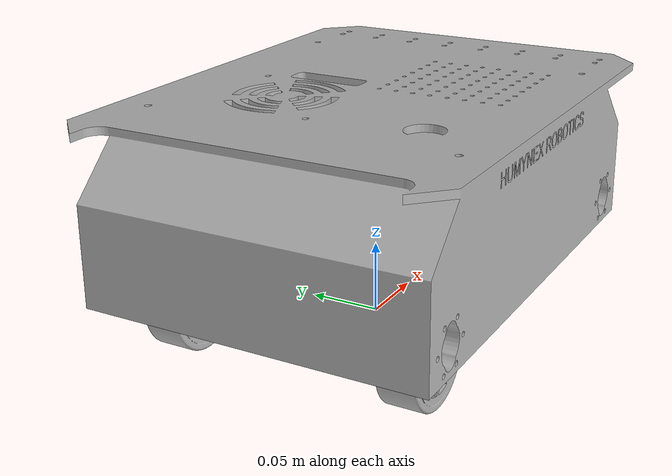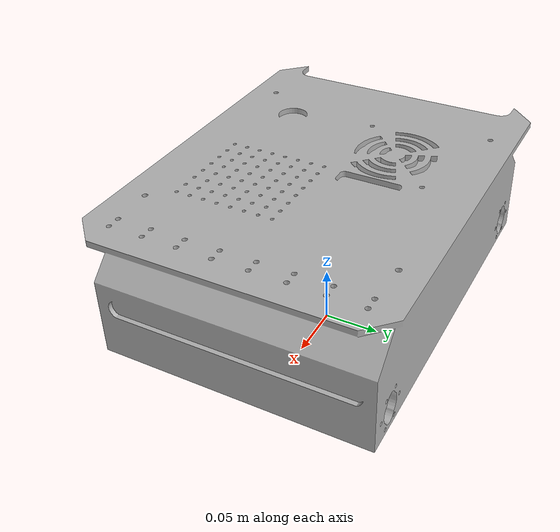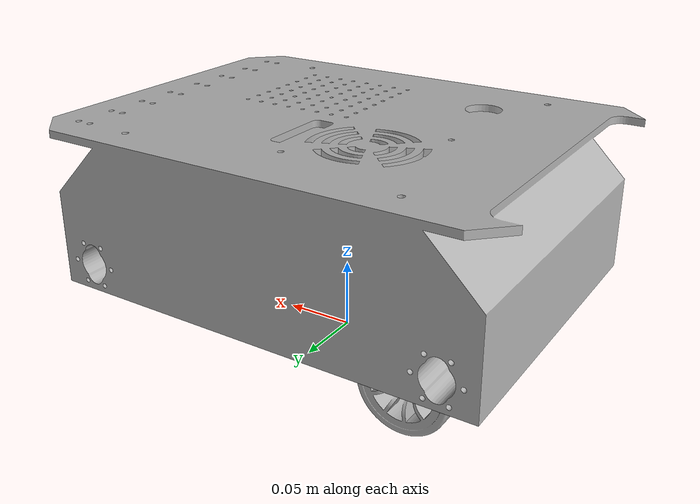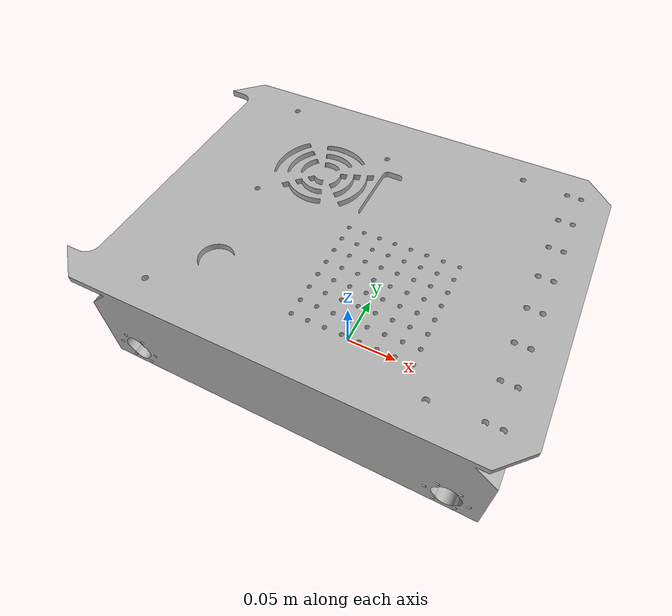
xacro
<?xml version="1.0" ?>
<robot name="mbot" xmlns:xacro="http://www.ros.org/wiki/xacro">

<xacro:include filename="$(find mbot_description)/urdf/materials.xacro" />
<xacro:include filename="$(find mbot_description)/urdf/mbot.trans" />
<xacro:include filename="$(find mbot_description)/urdf/mbot.gazebo" />
<link name="base_link">
  <inertial>
    <origin xyz="-0.007078599561218432 1.9724380014176952e-05 0.04251572924254428" rpy="0 0 0"/>
    <mass value="5.464337682688795"/>
    <inertia ixx="0.014973" iyy="0.027123" izz="0.035321" ixy="-2.4e-05" iyz="1e-06" ixz="0.002181"/>
  </inertial>
  <visual>
    <origin xyz="0 0 0" rpy="0 0 0"/>
    <geometry>
      <mesh filename="file://$(find mbot_description)/meshes/base_link.stl" scale="0.001 0.001 0.001"/>
    </geometry>
    <material name="silver"/>
  </visual>
  <collision>
    <origin xyz="0 0 0" rpy="0 0 0"/>
    <geometry>
      <mesh filename="file://$(find mbot_description)/meshes/base_link.stl" scale="0.001 0.001 0.001"/>
    </geometry>
  </collision>
</link>

<link name="right_back_wheel">
  <inertial>
    <origin xyz="-1.6533433490339977e-07 -0.00647885642709535 5.119932255936988e-13" rpy="0 0 0"/>
    <mass value="0.2490929871526092"/>
    <inertia ixx="9.3e-05" iyy="0.000155" izz="9.3e-05" ixy="-0.0" iyz="0.0" ixz="0.0"/>
  </inertial>
  <visual>
    <origin xyz="0.099924 0.077 -0.0315" rpy="0 0 0"/>
    <geometry>
      <mesh filename="file://$(find mbot_description)/meshes/right_back_wheel_1.stl" scale="0.001 0.001 0.001"/>
    </geometry>
    <material name="silver"/>
  </visual>
  <collision>
    <origin xyz="0.099924 0.077 -0.0315" rpy="0 0 0"/>
    <geometry>
      <mesh filename="file://$(find mbot_description)/meshes/right_back_wheel_1.stl" scale="0.001 0.001 0.001"/>
    </geometry>
  </collision>
</link>

<link name="left_back_wheel">
  <inertial>
    <origin xyz="-1.6533495193760128e-07 0.0064791947454798104 6.172562461159714e-13" rpy="0 0 0"/>
    <mass value="0.24909336875248736"/>
    <inertia ixx="9.3e-05" iyy="0.000155" izz="9.3e-05" ixy="-0.0" iyz="-0.0" ixz="0.0"/>
  </inertial>
  <visual>
    <origin xyz="0.099924 -0.077 -0.0315" rpy="0 0 0"/>
    <geometry>
      <mesh filename="file://$(find mbot_description)/meshes/left_back_wheel_1.stl" scale="0.001 0.001 0.001"/>
    </geometry>
    <material name="silver"/>
  </visual>
  <collision>
    <origin xyz="0.099924 -0.077 -0.0315" rpy="0 0 0"/>
    <geometry>
      <mesh filename="file://$(find mbot_description)/meshes/left_back_wheel_1.stl" scale="0.001 0.001 0.001"/>
    </geometry>
  </collision>
</link>

<link name="lidar_link">
  <inertial>
    <origin xyz="0.002881471612091506 1.653346680917725e-07 0.011508813813586163" rpy="0 0 0"/>
    <mass value="0.620567666884242"/>
    <inertia ixx="0.000165" iyy="0.000252" izz="0.000351" ixy="-0.0" iyz="-0.0" ixz="1.3e-05"/>
  </inertial>
  <visual>
    <origin xyz="0.055621 -0.0 -0.108" rpy="0 0 0"/>
    <geometry>
      <mesh filename="file://$(find mbot_description)/meshes/lidar_link_1.stl" scale="0.001 0.001 0.001"/>
    </geometry>
    <material name="silver"/>
  </visual>
  <collision>
    <origin xyz="0.055621 -0.0 -0.108" rpy="0 0 0"/>
    <geometry>
      <mesh filename="file://$(find mbot_description)/meshes/lidar_link_1.stl" scale="0.001 0.001 0.001"/>
    </geometry>
  </collision>
</link>

<joint name="j1" type="continuous">
  <origin xyz="-0.099924 -0.077 0.0315" rpy="0 0 0"/>
  <parent link="base_link"/>
  <child link="right_back_wheel"/>
  <axis xyz="-0.0 -1.0 -0.0"/>
</joint>

<joint name="j2" type="continuous">
  <origin xyz="-0.099924 0.077 0.0315" rpy="0 0 0"/>
  <parent link="base_link"/>
  <child link="left_back_wheel"/>
  <axis xyz="0.0 1.0 -0.0"/>
</joint>

<joint name="g1" type="fixed">
  <origin xyz="-0.055621 0.0 0.108" rpy="0 0 0"/>
  <parent link="base_link"/>
  <child link="lidar_link"/>
</joint>

</robot>

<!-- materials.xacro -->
<robot name="mbot" xmlns:xacro="http://www.ros.org/wiki/xacro" >

<material name="silver">
  <color rgba="0.700 0.700 0.700 1.000"/>
</material>

</robot>

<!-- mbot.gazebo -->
<robot name="mbot" xmlns:xacro="http://www.ros.org/wiki/xacro" >

<xacro:property name="body_color" value="Gazebo/Silver" />

<gazebo>
  <plugin name="control" filename="libgazebo_ros_control.so"/>
</gazebo>
<gazebo reference="base_link">
  <material>${body_color}</material>
  <mu1>0.2</mu1>
  <mu2>0.2</mu2>
  <self_collide>true</self_collide>
  <gravity>true</gravity>
</gazebo>

<gazebo reference="right_back_wheel_1">
  <material>${body_color}</material>
  <mu1>0.2</mu1>
  <mu2>0.2</mu2>
  <self_collide>true</self_collide>
</gazebo>

<gazebo reference="left_back_wheel_1">
  <material>${body_color}</material>
  <mu1>0.2</mu1>
  <mu2>0.2</mu2>
  <self_collide>true</self_collide>
</gazebo>

<gazebo reference="lidar_link_1">
  <material>${body_color}</material>
  <mu1>0.2</mu1>
  <mu2>0.2</mu2>
  <self_collide>true</self_collide>
</gazebo>

</robot>
